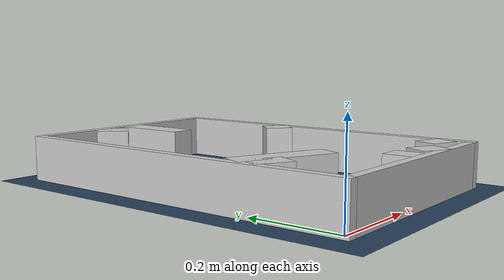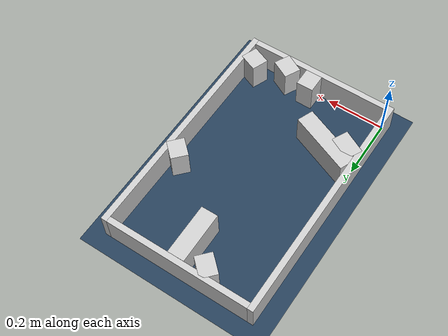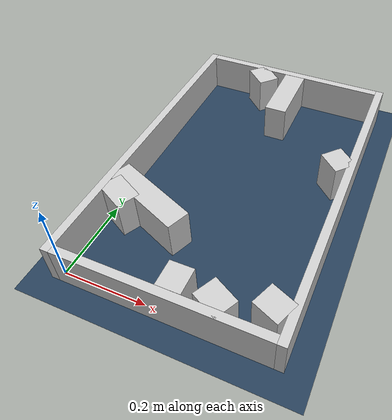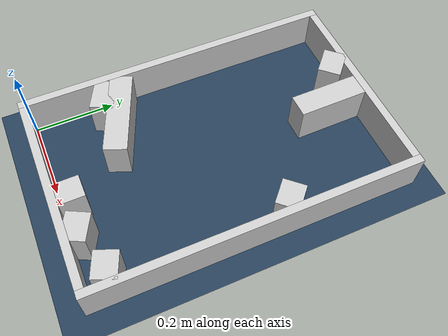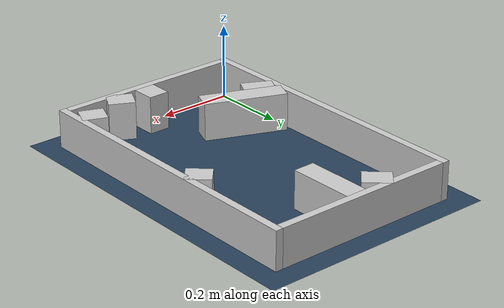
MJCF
<?xml version="1.0" ?>
<mujoco model="generated_real_template">
  <compiler angle="degree"/>
  <option timestep="0.002" integrator="implicitfast" iterations="100" cone="elliptic"/>
  <default>
    <geom density="1"/>
  </default>
  <asset>
    <texture builtin="gradient" height="3072" rgb1="0.3 0.5 0.7" rgb2="0 0 0" type="skybox" width="512"/>
    <texture builtin="checker" height="300" mark="edge" markrgb="0.8 0.8 0.8" name="groundplane" rgb1="0.2 0.3 0.4" rgb2="0.1 0.2 0.3" type="2d" width="300"/>
    <material name="groundplane" reflectance="0.2" texrepeat="5 5" texture="groundplane" texuniform="true"/>
  </asset>
  <worldbody>
    <light dir="0 0 -1" directional="true" pos="0 0 1.5"/>
    <geom name="floor" type="plane" condim="4" friction="0.5 0.005 0.001" material="groundplane" size="0 0 0.05"/>
    <body name="walls">
      <geom name="wall_boundary_left" type="box" condim="4" friction="1.0 0.005 0.0001" rgba="0.8 0.8 0.8 1" pos="-0.010000 0.387500 0.050000" euler="0 0 0.000000" size="0.010000 0.407500 0.050000"/>
      <geom name="wall_boundary_right" type="box" condim="4" friction="1.0 0.005 0.0001" rgba="0.8 0.8 0.8 1" pos="0.500000 0.387500 0.050000" euler="0 0 0.000000" size="0.010000 0.407500 0.050000"/>
      <geom name="wall_boundary_bottom" type="box" condim="4" friction="1.0 0.005 0.0001" rgba="0.8 0.8 0.8 1" pos="0.245000 -0.010000 0.050000" euler="0 0 0.000000" size="0.245000 0.010000 0.050000"/>
      <geom name="wall_boundary_top" type="box" condim="4" friction="1.0 0.005 0.0001" rgba="0.8 0.8 0.8 1" pos="0.245000 0.785000 0.050000" euler="0 0 0.000000" size="0.245000 0.010000 0.050000"/>
      <geom name="wall_inner_1_1" type="box" condim="4" friction="1.0 0.005 0.0001" rgba="0.8 0.8 0.8 1" pos="0.101287 0.198305 0.050000" euler="0 0 -22.040448" size="0.109272 0.028500 0.050000"/>
      <geom name="wall_inner_1_2" type="box" condim="4" friction="1.0 0.005 0.0001" rgba="0.8 0.8 0.8 1" pos="0.460032 0.053068 0.050000" euler="0 0 -22.040448" size="0.032331 0.028500 0.050000"/>
      <geom name="wall_inner_2_1" type="box" condim="4" friction="1.0 0.005 0.0001" rgba="0.8 0.8 0.8 1" pos="0.036783 0.182064 0.050000" euler="0 0 -26.962320" size="0.041268 0.028500 0.050000"/>
      <geom name="wall_inner_2_2" type="box" condim="4" friction="1.0 0.005 0.0001" rgba="0.8 0.8 0.8 1" pos="0.353524 0.020938 0.050000" euler="0 0 -26.962320" size="0.034263 0.028500 0.050000"/>
      <geom name="wall_inner_3_1" type="box" condim="4" friction="1.0 0.005 0.0001" rgba="0.8 0.8 0.8 1" pos="0.263177 0.030941 0.050000" euler="0 0 90.552111" size="0.030943 0.028500 0.050000"/>
      <geom name="wall_inner_3_2" type="box" condim="4" friction="1.0 0.005 0.0001" rgba="0.8 0.8 0.8 1" pos="0.256840 0.688531 0.050000" euler="0 0 90.552111" size="0.086473 0.028500 0.050000"/>
      <geom name="wall_inner_4_1" type="box" condim="4" friction="1.0 0.005 0.0001" rgba="0.8 0.8 0.8 1" pos="0.466012 0.476644 0.050000" euler="0 0 137.569540" size="0.032500 0.028500 0.050000"/>
      <geom name="wall_inner_4_2" type="box" condim="4" friction="1.0 0.005 0.0001" rgba="0.8 0.8 0.8 1" pos="0.167438 0.749571 0.050000" euler="0 0 137.569540" size="0.036153 0.028500 0.050000"/>
    </body>
  </worldbody>
</mujoco>
